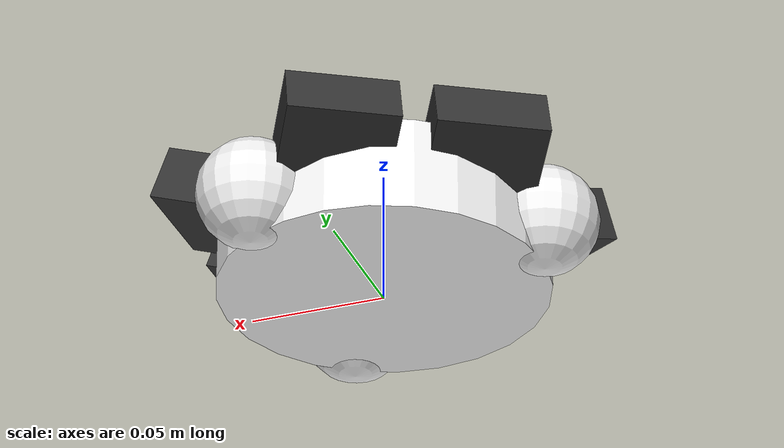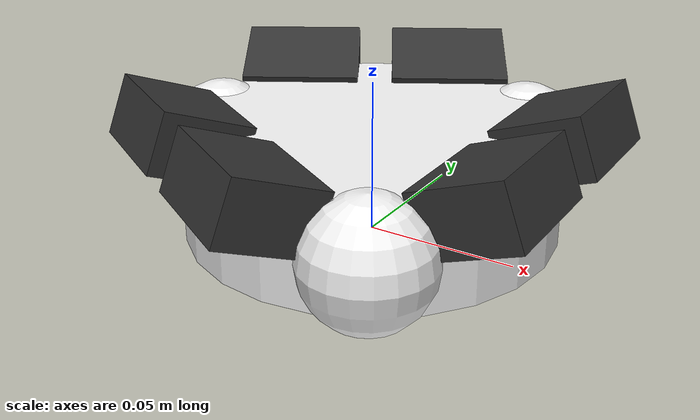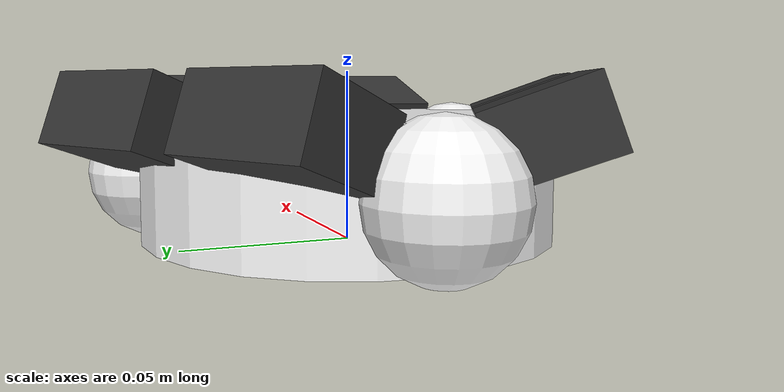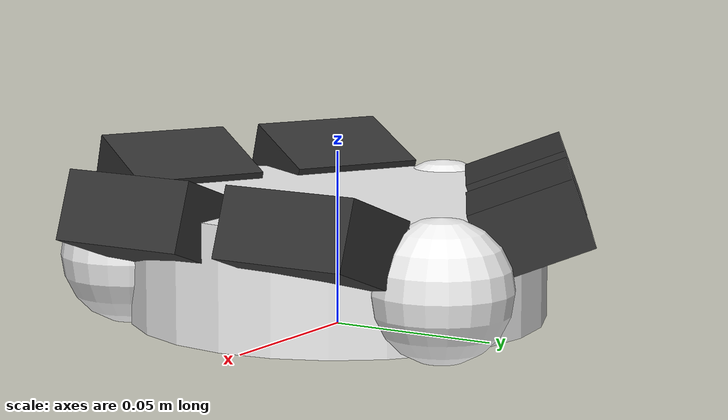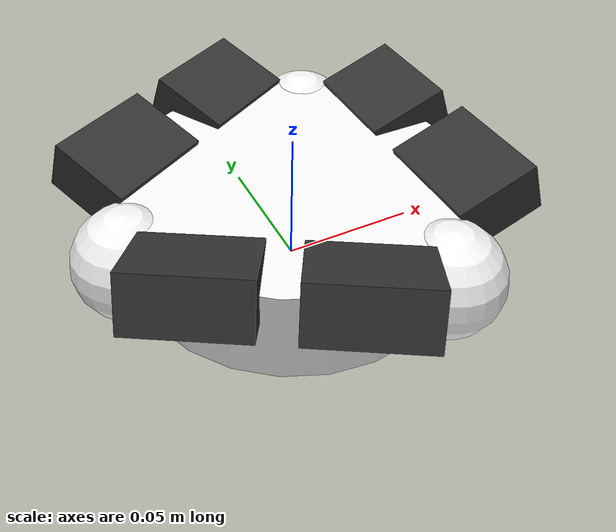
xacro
<?xml version="1.0"?>
<robot xmlns:xacro="http://www.ros.org/wiki/xacro" >

<!--model of the base of the robot without collision on the main geometries. Spheres are used to set collisions-->

    <xacro:property name="servo_height" value="0.043"/>
    <xacro:property name="draft_angle" value="-0.349066"/>

    <xacro:property name="_120_degrees" value="2.0944"/>
    <xacro:property name="_240_degrees" value="4.18879"/>
    <xacro:property name="_180_degrees" value="3.14159"/>

    <xacro:property name="servo1_x" value="-0.06899"/>
    <xacro:property name="servo1_y" value="0.04750"/>
    <xacro:property name="servo2_x" value="-0.00664"/>
    <xacro:property name="servo2_y" value="0.08350"/>
    <xacro:property name="servo3_x" value="0.07563"/>
    <xacro:property name="servo3_y" value="0.03600"/>
    <xacro:property name="servo4_x" value="0.07563"/>
    <xacro:property name="servo4_y" value="-0.03600"/>
    <xacro:property name="servo5_x" value="-0.00664"/>
    <xacro:property name="servo5_y" value="-0.08350"/>
    <xacro:property name="servo6_x" value="-0.06899"/>
    <xacro:property name="servo6_y" value="-0.04750"/>

    <material name="white">
        <color rgba="0.95 0.95 0.95 1"/>
    </material>

    <material name="black">
        <color rgba="0.2 0.2 0.2 1"/>
    </material>

<!--Base  of the robot -->

    <link name="base_link">
        <visual>
            <material name="white"/>
            <geometry>
                <cylinder length = "0.035" radius = "0.06"/>
            </geometry>
            <origin xyz="0 0 0.02" rpy="0 0 -0.523"/>
        </visual>

        <inertial>
            <origin xyz="0 0 1" rpy="0 0 0"/>
            <mass value="0.15"/>
            <inertia
                ixx="0.00024" ixy="0.0" ixz="0.0"
                iyy="0.00025" iyz="0.0"
                izz="0.00041"/>
        </inertial>
    </link>

<!--servo link macro-->

    <xacro:macro name="servo_link" params="link_name">
        <link name="${link_name}">
            <visual>
                <material name="black"/>
                <geometry>
                    <box size="0.030 0.040 0.020"/>
                </geometry>
                <origin xyz="-0.023 -0.010 0"/>
            </visual>

            <inertial>
                <origin xyz="-0.023 -0.010 0"/>
                <mass value="0.060"/>
                <inertia
                    ixx="0.00001" ixy="0.0" ixz="0.0"
                    iyy="0.0000065" iyz="0.0"
                    izz="0.0000125"/>
            </inertial>
        </link>
    </xacro:macro>

<!--macro for collision spheres-->

    <xacro:macro name="collision_sphere" params="link_name joint_name x_pos y_pos radius">

        <joint name="${joint_name}" type="fixed">
            <parent link="base_link"/>
            <child link="${link_name}"/>
            <origin xyz="${x_pos} ${y_pos} ${radius}"/>
        </joint>

        <link name="${link_name}">
            <visual>
                <material name="white"/>
                <geometry>
                    <sphere radius="${radius}"/>
                </geometry>
            </visual>

            <collision>
                <geometry>
                    <sphere radius="${radius}"/>
                </geometry>
            </collision>

            <inertial>
                <origin xyz="0.0 0.0 0.0"/>
                <mass value="0.06"/>
                <inertia
                    ixx="0.000015" ixy="0.0" ixz="0.0"
                    iyy="0.000015" iyz="0.0"
                    izz="0.000015"/>
            </inertial>
        </link>
    </xacro:macro>

<!--add collision spheres to base-->

<xacro:collision_sphere link_name="collision_link1" joint_name="collision_joint1" x_pos="-0.06" y_pos="0.0" radius="0.02"/>

<xacro:collision_sphere link_name="collision_link2" joint_name="collision_joint2" x_pos="0.03" y_pos="-0.0519" radius="0.02"/>

<xacro:collision_sphere link_name="collision_link3" joint_name="collision_joint3" x_pos="0.03" y_pos="0.0519" radius="0.02"/>

<!--add joints and links for the servos -->

    <joint name="servo1_joint" type="fixed">
        <parent link="base_link"/>
        <child link="servo1_link"/>
        <origin xyz="${servo1_x} ${servo1_y} ${servo_height}" rpy="0 ${draft_angle} ${_120_degrees}"/>
    </joint>

    <xacro:servo_link link_name="servo1_link"/>

    <joint name="servo2_joint" type="fixed">
        <parent link="base_link"/>
        <child link="servo2_link"/>
        <origin xyz="${servo2_x} ${servo2_y} ${servo_height}" rpy="${_180_degrees} ${draft_angle} ${_120_degrees}"/>
    </joint>

    <xacro:servo_link link_name="servo2_link"/>

    <joint name="servo3_joint" type="fixed">
        <parent link="base_link"/>
        <child link="servo3_link"/>
        <origin xyz="${servo3_x} ${servo3_y} ${servo_height}" rpy="0 ${draft_angle} 0"/>
    </joint>

    <xacro:servo_link link_name="servo3_link"/>

    <joint name="servo4_joint" type="fixed">
        <parent link="base_link"/>
        <child link="servo4_link"/>
        <origin xyz="${servo4_x} ${servo4_y} ${servo_height}" rpy="${_180_degrees} ${draft_angle} 0"/>
    </joint>

    <xacro:servo_link link_name="servo4_link"/>

    <joint name="servo5_joint" type="fixed">
        <parent link="base_link"/>
        <child link="servo5_link"/>
        <origin xyz="${servo5_x} ${servo5_y} ${servo_height}" rpy="0 ${draft_angle} ${_240_degrees}"/>
    </joint>

    <xacro:servo_link link_name="servo5_link"/>

    <joint name="servo6_joint" type="fixed">
        <parent link="base_link"/>
        <child link="servo6_link"/>
        <origin xyz="${servo6_x} ${servo6_y} ${servo_height}" rpy="${_180_degrees} ${draft_angle} ${_240_degrees}"/>
    </joint>

    <xacro:servo_link link_name="servo6_link"/>

</robot>
